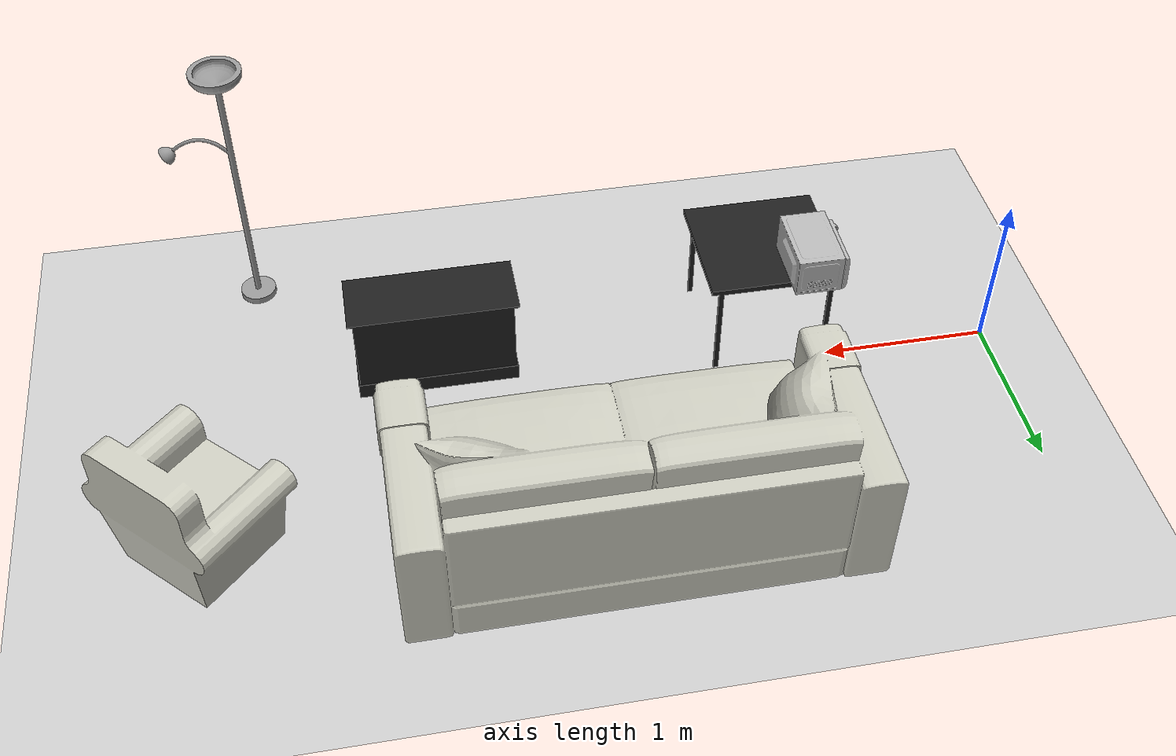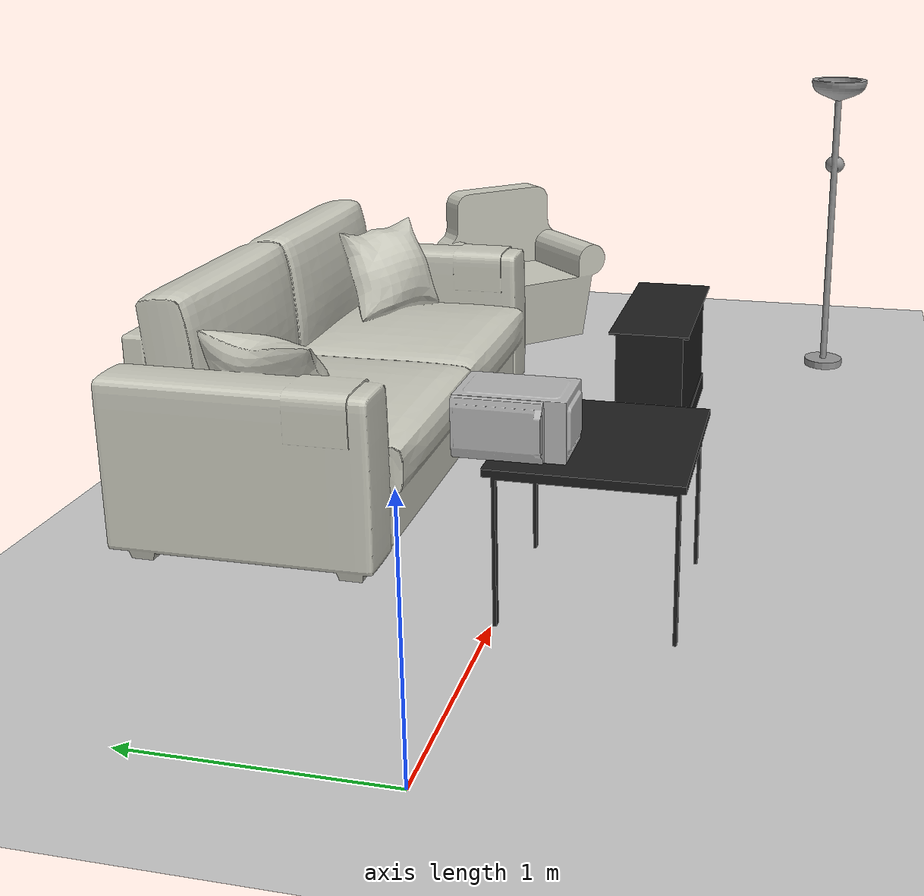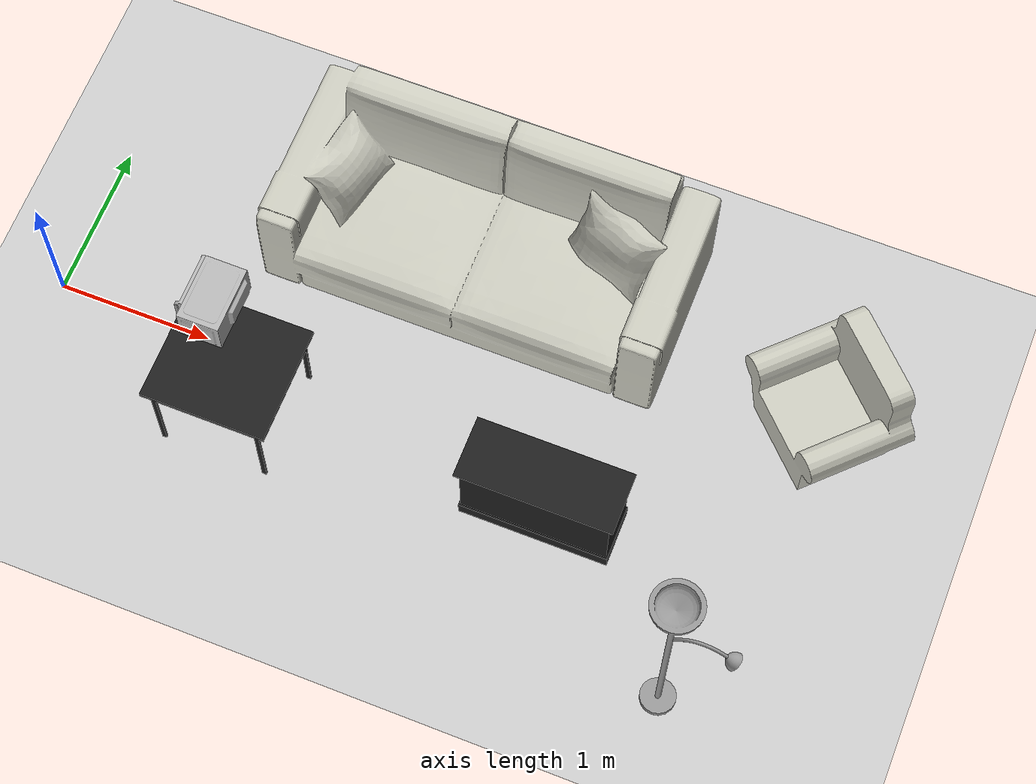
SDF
<sdf version="1.6">
 <world name="default">
  <physics name="default_physics" default="0" type="ode">
   <ode>
    <solver>
     <type>quick</type>
     <iters>20</iters>
     <sor>1</sor>
     <use_dynamic_moi_rescaling>0</use_dynamic_moi_rescaling>
    </solver>
    <constraints>
     <cfm>0</cfm>
     <erp>0.2</erp>
     <contact_max_correcting_vel>100</contact_max_correcting_vel>
     <contact_surface_layer>0</contact_surface_layer>
    </constraints>
   </ode>
   <real_time_update_rate>1000</real_time_update_rate>
   <max_step_size>0.001</max_step_size>
   <real_time_factor>1</real_time_factor>
  </physics>
  <light name="sun" type="directional">
   <pose>0 0 10 0 -0 0</pose>
   <diffuse>0.8 0.8 0.8 1</diffuse>
   <specular>0.2 0.2 0.2 1</specular>
   <attenuation>
    <range>1000</range>
    <constant>0.9</constant>
    <linear>0.01</linear>
    <quadratic>0.001</quadratic>
   </attenuation>
   <direction>-0.5 0.1 -0.9</direction>
  </light>
  <model name="ground_plane">
   <static>1</static>
   <link name="link">
    <collision name="collision">
     <geometry><plane><normal>0 0 1</normal><size>100 100</size></plane></geometry>
     <surface><friction><ode><mu>100</mu><mu2>50</mu2></ode></friction></surface>
    </collision>
    <visual name="visual">
     <cast_shadows>0</cast_shadows>
     <geometry><plane><normal>0 0 1</normal><size>100 100</size></plane></geometry>
     <material>
      <script><uri>file://media/materials/scripts/gazebo.material</uri><name>Gazebo/Grey</name></script>
     </material>
    </visual>
    <velocity_decay><linear>0</linear><angular>0</angular></velocity_decay>
   </link>
  </model>
  <scene><ambient>0.4 0.4 0.4 1</ambient><background>0.7 0.7 0.7 1</background><shadows>1</shadows></scene>
  <spherical_coordinates>
   <surface_model>EARTH_WGS84</surface_model>
   <latitude_deg>0</latitude_deg>
   <longitude_deg>0</longitude_deg>
   <elevation>0</elevation>
   <heading_deg>0</heading_deg>
  </spherical_coordinates>
  <model name="kitchen_table">
   <static>1</static>
   <link name="link">
    <collision name="colision1">
     <geometry>
      <mesh><uri>model://kitchen_table/meshes/kitchen_table.stl</uri><scale>1 1 1</scale></mesh>
     </geometry>
    </collision>
    <visual name="visual1">
     <geometry>
      <mesh><uri>model://kitchen_table/meshes/kitchen_table.stl</uri><scale>1 1 1</scale></mesh>
     </geometry>
     <material>
      <script><uri>file://media/materials/scripts/gazebo.material</uri><name>Gazebo/FlatBlack</name></script>
     </material>
    </visual>
    <velocity_decay><linear>0</linear><angular>0</angular></velocity_decay>
   </link>
   <pose>0.961354 -0.728855 0 0 -0 0</pose>
  </model>
  <gravity>0 0 -9.81</gravity>
  <magnetic_field>6e-06 2.3e-05 -4.2e-05</magnetic_field>
  <atmosphere type="adiabatic"/>
  <model name="microwave_oven">
   <link name="base_link">
    <inertial>
     <pose>-0.003499 0.0063 0.095793 0 -0 0</pose>
     <mass>100</mass>
     <inertia>
      <ixx>0.15798</ixx>
      <ixy>0.002699</ixy>
      <ixz>0.0025714</ixz>
      <iyy>0.31998</iyy>
      <iyz>-0.0019679</iyz>
      <izz>10.0</izz>
     </inertia>
    </inertial>
    <collision name="base_link_collision">
     <geometry><mesh><scale>1 1 1</scale><uri>model://microwave_oven/meshes/base_link.STL</uri></mesh></geometry>
    </collision>
    <visual name="base_link_visual">
     <geometry><mesh><scale>1 1 1</scale><uri>model://microwave_oven/meshes/base_link.STL</uri></mesh></geometry>
    </visual>
   </link>
   <link name="door_link">
    <pose>-0.2115 -0.13648 0.002131 1.5708 -0 0</pose>
    <inertial>
     <pose>0.18216 0.11795 0.017746 0 -0 0</pose>
     <mass>1.117</mass>
     <inertia>
      <ixx>0.0067183</ixx>
      <ixy>-1.793e-07</ixy>
      <ixz>-0.00018641</ixz>
      <iyy>0.015795</iyy>
      <iyz>-8.4864e-08</iyz>
      <izz>0.022237</izz>
     </inertia>
    </inertial>
    <collision name="door_link_collision">
     <geometry><mesh><scale>1 1 1</scale><uri>model://microwave_oven/meshes/door_link.STL</uri></mesh></geometry>
     <surface><friction><ode><mu>100</mu><mu2>50</mu2></ode></friction></surface>
    </collision>
    <visual name="door_link_visual">
     <geometry><mesh><scale>1 1 1</scale><uri>model://microwave_oven/meshes/door_link.STL</uri></mesh></geometry>
    </visual>
   </link>
   <joint name="door_joint" type="revolute">
    <child>door_link</child>
    <parent>base_link</parent>
    <axis>
     <xyz>0 0 1</xyz>
     <limit><lower>-1.5708</lower><upper>0</upper><effort>30</effort><velocity>1</velocity></limit>
     <dynamics>
      <damping>0.5</damping>
      <friction>5</friction>
      <spring_reference>0</spring_reference>
      <spring_stiffness>0</spring_stiffness>
     </dynamics>
     <use_parent_model_frame>1</use_parent_model_frame>
    </axis>
   </joint>
   <pose>1.16461 -0.068784 0.675001 -1.8e-05 0 -1.57302</pose>
  </model>
  <model name="arm_chair">
   <static>1</static>
   <link name="link">
    <collision name="colision1">
     <geometry><mesh><uri>model://arm_chair/meshes/arm_chair.stl</uri><scale>1 1 1</scale></mesh></geometry>
    </collision>
    <visual name="visual1">
     <geometry><mesh><uri>model://arm_chair/meshes/arm_chair.stl</uri><scale>1 1 1</scale></mesh></geometry>
     <material>
      <script><uri>file://media/materials/scripts/gazebo.material</uri><name>Gazebo/PaintedWall</name></script>
     </material>
    </visual>
    <velocity_decay><linear>0</linear><angular>0</angular></velocity_decay>
   </link>
   <pose>4.33818 0.815613 0 0 0 -0.785398</pose>
  </model>
  <model name="floor_lamp">
   <static>1</static>
   <link name="link">
    <collision name="colision1">
     <geometry><mesh><uri>model://floor_lamp/meshes/floor_lamp.stl</uri><scale>1 1 1</scale></mesh></geometry>
    </collision>
    <visual name="visual1">
     <geometry><mesh><uri>model://floor_lamp/meshes/floor_lamp.stl</uri><scale>1 1 1</scale></mesh></geometry>
     <material>
      <script><uri>file://media/materials/scripts/gazebo.material</uri><name>Gazebo/Grey</name></script>
     </material>
    </visual>
    <velocity_decay><linear>0</linear><angular>0</angular></velocity_decay>
   </link>
   <pose>4.41638 -1.15516 0.027795 0 -0 0</pose>
  </model>
  <model name="sofa">
   <static>1</static>
   <link name="link">
    <collision name="colision1">
     <geometry><mesh><uri>model://sofa/meshes/sofa.stl</uri><scale>1 1 1</scale></mesh></geometry>
    </collision>
    <visual name="visual1">
     <geometry><mesh><uri>model://sofa/meshes/sofa.stl</uri><scale>1 1 1</scale></mesh></geometry>
     <material>
      <script><uri>file://media/materials/scripts/gazebo.material</uri><name>Gazebo/PaintedWall</name></script>
     </material>
    </visual>
    <velocity_decay><linear>0</linear><angular>0</angular></velocity_decay>
   </link>
   <pose>2.45572 1.07511 0 0 -0 0</pose>
  </model>
  <model name="sideboard">
   <static>1</static>
   <link name="link">
    <collision name="colision1">
     <geometry><mesh><uri>model://sideboard/meshes/sideboard.stl</uri><scale>1 1 1</scale></mesh></geometry>
    </collision>
    <visual name="visual1">
     <geometry><mesh><uri>model://sideboard/meshes/sideboard.stl</uri><scale>1 1 1</scale></mesh></geometry>
     <material>
      <script><uri>file://media/materials/scripts/gazebo.material</uri><name>Gazebo/FlatBlack</name></script>
     </material>
    </visual>
    <velocity_decay><linear>0</linear><angular>0</angular></velocity_decay>
   </link>
   <pose>2.86888 -0.511468 0 0 -0 0</pose>
  </model>
 </world>
</sdf>
